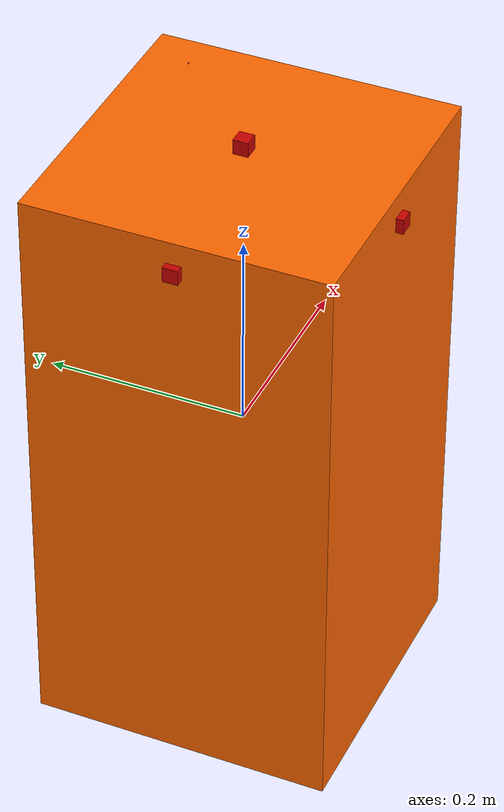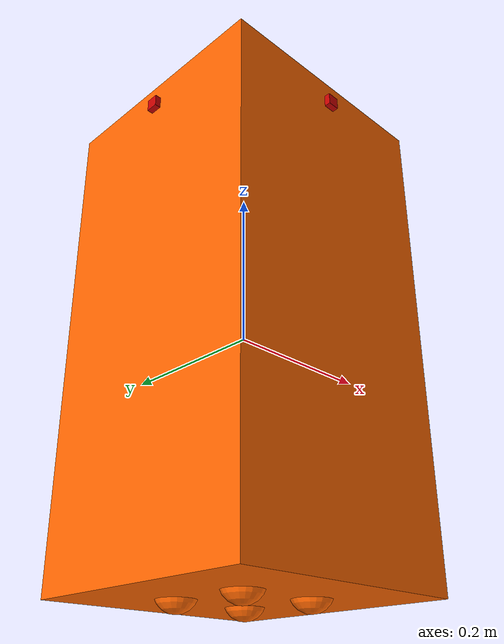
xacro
<?xml version="1.0"?>
<robot name="power" xmlns:xacro="http://www.ros.org/wiki/xacro">

  <!-- The following included files set up definitions of parts of the robot body -->

  <!-- power base -->
  <xacro:include filename="$(find mrs_description)/urdf/power_base/base.urdf.xacro" />

  <!-- materials for visualization -->
  <xacro:include filename="$(find mrs_description)/urdf/materials.urdf.xacro" />

  <!-- Now we can start using the macros included above to define the actual power -->

  <!-- foot for arm-->
  <xacro:power_base name="base"/>

  <gazebo>
    <plugin name="gazebo_ros_controller_manager" filename="libgazebo_ros_control.so">
      <robotNamespace>/mrs</robotNamespace>
    </plugin>

    <plugin name="object_controller" filename="libgazebo_ros_planar_move.so">
      <commandTopic>/mrs/cmd_vel</commandTopic>
      <odometryTopic>odom</odometryTopic>
      <odometryFrame>odom</odometryFrame>
      <odometryRate>20.0</odometryRate>
      <robotBaseFrame>base_footprint</robotBaseFrame>
    </plugin>

  </gazebo>

</robot>

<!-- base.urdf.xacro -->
<robot xmlns:xacro="http://www.ros.org/wiki/xacro">
<xacro:include filename="$(find mrs_description)/urdf/power_base/ball_bearing.urdf.xacro" />
    <!-- constants for robot -->
<xacro:include filename="$(find mrs_description)/urdf/common_mrs.xacro" />
  <!-- simplified box collision geometry for base -->
<xacro:include filename="$(find
mrs_description)/urdf/power_base/sm_other.urdf.xacro" />
  <property name="mass" value="22.0"/>
  <property name="p_baselen" value=".3" />
  <property name="p_basewidth" value=".3" />
  <property name="p_baseheight" value=".6" />

  <xacro:macro name="power_base" params="name">
  <link name="${name}_footprint">
    <inertial>
      <mass value="0.1"/>
      <origin xyz="0 0 ${-p_baseheight/2}" rpy="0 0 0"/>
      <inertia ixx="1.0" ixy="0.0" ixz="0.0" iyy="1.0" iyz="0.0" izz="1.0"/>
    </inertial>
    <visual>
      <origin xyz="0 0 0" rpy="0 0 0"/>
      <geometry>
        <box size="0.001 0.001 0.001"/>
      </geometry>
      <material name="red"/>
    </visual>
    <collision>
      <origin xyz="0 0 ${-p_baseheight/2}" rpy="0 0 0"/>
      <geometry>
        <box size="0.001 0.001 0.001"/>
      </geometry>
    </collision>
  </link>

  <joint name="${name}_footprint_joint" type="fixed">
    <origin xyz="0 0 0" rpy="0 0 0"/>
    <child link="${name}_link_support"/>
    <parent link="${name}_footprint"/>
  </joint>

  <link name="${name}_link_support">
    <visual>
      <geometry>
        <box size="${p_baselen} ${p_basewidth} ${p_baseheight}" />
      </geometry>
      <material name="Orange"/>
    </visual>
    <collision>
      <geometry>
        <box size="${p_baselen-0.1} ${p_basewidth-0.05} ${p_baseheight-0.05}" />
      </geometry>
    </collision>
    <xacro:default_inertial mass="2" />
  </link>

  <gazebo reference="${name}_link_support">
    <material>Gazebo/Orange</material>
  </gazebo>

<xacro:Ball_bearing mass="0.1" instance="1" dia="0.05" x="0.05" y="0.05" z="-0.29" parent="${name}_link_support"/>
<xacro:Ball_bearing mass="0.1" instance="2" dia="0.05" x="-0.05" y="0.05" z="-0.29" parent="${name}_link_support"/>
<xacro:Ball_bearing mass="0.1" instance="3" dia="0.05" x="0.05" y="-0.05" z="-0.29" parent="${name}_link_support"/>
<xacro:Ball_bearing mass="0.1" instance="4" dia="0.05" x="-0.05" y="-0.05" z="-0.29" parent="${name}_link_support"/>

<xacro:Camera parent="${name}_link_support" prefix="base" x="0.15" y="0" z="0.27" instance="1" />
<xacro:Camera parent="${name}_link_support" prefix="base" x="0" y="0.15" z="0.27" instance="2" />
<xacro:Camera parent="${name}_link_support" prefix="base" x="-0.15" y="0" z="0.27" instance="3" />
<xacro:Camera parent="${name}_link_support" prefix="base" x="0" y="-0.15" z="0.27" instance="4" />

<xacro:Laser parent="${name}_link_support" prefix="base" x="0" y="0" z="0.31" instance="1" />

<xacro:IMU parent="${name}_link_support" prefix="base" x="0.1" y="0.1" z="0.31"  />
  </xacro:macro>

</robot>

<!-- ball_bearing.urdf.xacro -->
<robot xmlns:xacro="http://www.ros.org/wiki/xacro">

		<!-- Constants for robot -->
	<xacro:include filename="$(find mrs_description)/urdf/common_mrs.xacro" />
  <!-- simplified box collision geometry for base -->

  <property name="mass" value="22.0"/>

 <macro name="Ball_bearing" params="mass instance dia x y z parent">
  <joint name="bearing_joint_${instance}" type="fixed">
    <origin rpy="0 0 0" xyz="${x} ${y} ${z}"/>
    <parent link="${parent}"/>
    <child link="bearing_link1_${instance}"/>
  </joint>
  <link name="bearing_link1_${instance}">
    <inertial>
      <mass value="${mass}"/>
      <origin xyz="0 0 0"/>
      <inertia ixx="${2/5*mass*dia/2*dia/2}" ixy="0" ixz="0" iyy="${2/5*mass*dia/2*dia/2}" iyz="0" izz="${2/5*mass*dia/2*dia/2}"/>
    </inertial>

  </link>
   <link name="bearing_link2_${instance}">
      <inertial>
        <mass value="${mass}"/>
        <origin xyz="0 0 0"/>
        <inertia ixx="${2/5*mass*dia/2*dia/2}" ixy="0" ixz="0" iyy="${2/5*mass*dia/2*dia/2}" iyz="0" izz="${2/5*mass*dia/2*dia/2}"/>
      </inertial>
      <visual>
      <origin rpy="0 0 0" xyz="0 0 0"/>
      <geometry>
        <sphere radius="${dia/2}"/>
      </geometry>
      <material name="Orange"/>
    </visual>
    <collision>
      <origin rpy="0 0 0" xyz="0 0 0"/>
      <geometry>
        <sphere radius="${dia/2}"/>
      </geometry>
      <contact_coefficients> <mu>0.0</mu> </contact_coefficients>
    </collision>
    </link>
      <joint name="bearing_joint2_${instance}" type="fixed">
    <origin rpy="0 0 0" xyz="0 0 0"/>
    <parent link="bearing_link1_${instance}"/>
    <child link="bearing_link2_${instance}"/>
  </joint>

  	<gazebo reference="bearing_link1_${instance}">
		<material>Gazebo/Black</material>
		<selfCollide>false</selfCollide>
	</gazebo>
	<gazebo reference="bearing_link2_${instance}">
		<material>Gazebo/Black</material>
		<selfCollide>false</selfCollide>
	</gazebo>

	</macro>
	</robot>

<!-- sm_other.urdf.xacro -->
<robot xmlns:xacro="http://www.ros.org/wiki/xacro">

        <!-- Constants for robot -->
    <xacro:include filename="$(find mrs_description)/urdf/common_mrs.xacro" />
  <!-- simplified box collision geometry for base -->

  <property name="mass" value="22.0"/>

   <!-- Size of square 'camera' box -->
  <xacro:property name="camera_size" value="0.015" />

    <xacro:macro name="Camera" params="parent prefix x y z instance">
    <joint name="${instance}_${prefix}_camera_joint" type="fixed">
      <axis xyz="1 0 0" />
      <parent link="${parent}" />
      <child link="${instance}_${prefix}_camera_link" />
      <origin rpy="0 0 0" xyz="${x} ${y} ${z}" />
    </joint>
    <link name="${instance}_${prefix}_camera_link">
      <visual>
        <geometry>
            <box size="${camera_size} ${camera_size} ${camera_size}"/>
        </geometry>
        <origin rpy="0 0 0 " xyz="0 0 0" />
        <material name="Red"/>
      </visual>
      <collision>
        <origin rpy="0 0 0 " xyz="0 0 0" />
        <geometry>
            <box size="${camera_size} ${camera_size} ${camera_size}"/>
        </geometry>
      </collision>
      <inertial>
        <mass value="1e-5" />
        <origin xyz="0 0 0" rpy="0 0 0"/>
        <inertia ixx="1e-6" ixy="0" ixz="0" iyy="1e-6" iyz="0" izz="1e-6" />
      </inertial>
    </link>
    <gazebo reference="${instance}_${prefix}_camera_link">
      <mu1>0.2</mu1>
      <mu2>0.2</mu2>
      <material>Gazebo/Red</material>

      <sensor type="camera" name="${instance}_${prefix}_camera">
        <always_on>true</always_on>
        <update_rate>30.0</update_rate>
        <camera name="${instance}_${prefix}_camera">
          <horizontal_fov>1.3962634</horizontal_fov>
          <image>
            <width>800</width>
            <height>800</height>
            <format>R8G8B8</format>
          </image>
          <clip>
            <near>0.02</near>
            <far>300</far>
          </clip>
        </camera>
        <plugin name="camera_controller" filename="libgazebo_ros_camera.so">
          <cameraName>mrs/${instance}_${prefix}_camera</cameraName>
          <imageTopicName>image_raw</imageTopicName>
          <cameraInfoTopicName>camera_info</cameraInfoTopicName>
          <frameName>camera_link</frameName>
          <hackBaseline>0.07</hackBaseline>
          <distortionK1>0.0</distortionK1>
          <distortionK2>0.0</distortionK2>
          <distortionK3>0.0</distortionK3>
          <distortionT1>0.0</distortionT1>
          <distortionT2>0.0</distortionT2>
        </plugin>
      </sensor>
    </gazebo>

    </xacro:macro>

  <xacro:macro name="IMU" params="parent prefix x y z">
    <joint name="${prefix}_imu_joint" type="fixed">
      <axis xyz="1 0 0" />
      <parent link="${parent}" />
      <child link="${prefix}_imu_link" />
      <origin rpy="0 0 0" xyz="${x} ${y} ${z}" />
    </joint>
    <link name="${prefix}_imu_link">
      <visual>
        <geometry>
            <box size="0.001 0.001 0.001"/>
        </geometry>
        <origin rpy="0 0 0 " xyz="0 0 0" />
        <material name="Red"/>
      </visual>
      <collision>
        <origin rpy="0 0 0 " xyz="0 0 0" />
        <geometry>
            <box size="0.001 0.001 0.001"/>
        </geometry>
      </collision>
      <inertial>
        <mass value="1e-5" />
        <origin xyz="0 0 0" rpy="0 0 0"/>
        <inertia ixx="1e-6" ixy="0" ixz="0" iyy="1e-6" iyz="0" izz="1e-6" />
      </inertial>
    </link>
    <gazebo>
      <plugin filename="libgazebo_ros_imu.so" name="imu_en_ros">
        <bodyName>${prefix}_imu_link</bodyName>
        <robotNamespace>mrs</robotNamespace>
        <topicName>${prefix}_IMU</topicName>
      </plugin>
    </gazebo>

  </xacro:macro>

    <xacro:macro name="Laser" params="parent prefix x y z instance">
    <joint name="${instance}_${prefix}_laser_joint" type="fixed">
      <axis xyz="1 0 0" />
      <parent link="${parent}" />
      <child link="${instance}_${prefix}_laser_link" />
      <origin rpy="0 0 0" xyz="${x} ${y} ${z}" />
    </joint>
    <link name="${instance}_${prefix}_laser_link">
      <visual>
        <geometry>
            <box size="${camera_size} ${camera_size} ${camera_size}"/>
        </geometry>
        <origin rpy="0 0 0 " xyz="0 0 0" />
        <material name="Red"/>
      </visual>
      <collision>
        <origin rpy="0 0 0 " xyz="0 0 0" />
        <geometry>
            <mesh filename="package://mrs_description/meshes/hokuyo.dae"/>
        </geometry>
      </collision>
      <inertial>
        <mass value="1e-5" />
        <origin xyz="0 0 0" rpy="0 0 0"/>
        <inertia ixx="1e-6" ixy="0" ixz="0" iyy="1e-6" iyz="0" izz="1e-6" />
      </inertial>
    </link>
    <gazebo reference="${instance}_${prefix}_laser_link">
      <sensor type="gpu_ray" name="${instance}_${prefix}_lasersensor">
        <pose>0 0 0 0 0 0</pose>
        <visualize>false</visualize>
        <update_rate>40</update_rate>
        <ray>
          <scan>
            <horizontal>
              <samples>720</samples>
              <resolution>1</resolution>
              <min_angle>-1.570796</min_angle>
              <max_angle>1.570796</max_angle>
            </horizontal>
          </scan>
          <range>
            <min>0.10</min>
            <max>30.0</max>
            <resolution>0.01</resolution>
          </range>
        </ray>
        <plugin name="gazebo_ros_head_hokuyo_controller" filename="libgazebo_ros_gpu_laser.so">
          <topicName>/mrs/${instance}_${prefix}_lasersensor</topicName>
          <frameName>${instance}_${prefix}_laser_link</frameName>
        </plugin>
      </sensor>
    </gazebo>
    </xacro:macro>

    <xacro:macro name="SMRadprobe" params="parent prefix reflect instance">
        <joint name="${instance}_${prefix}_SMRadprobe_joint" type="fixed">
            <parent link="${parent}" />
            <child link="${instance}_${prefix}_rad_pole" />
            <origin rpy="0 ${-pi/2} 0" xyz="-0.1 0 0" />
        </joint>
        <link name="${instance}_${prefix}_rad_pole">
            <visual>
                <geometry>
                    <cylinder length="0.2" radius=".03" />
                </geometry>
                <origin rpy="0 0 0 " xyz="0 0 0" />
                <material name="Gray">
                    <color rgba=".7 .7 .7 1" />
                </material>
            </visual>
        </link>
        <joint name="${instance}_${prefix}_rad_joint" type="fixed">
            <axis xyz="0 0 1" />
            <origin rpy="0 0 0" xyz="0 0 0.1" />
            <parent link="${instance}_${prefix}_rad_pole" />
            <child link="${instance}_${prefix}_rad" />
        </joint>
        <link name="${instance}_${prefix}_rad">
            <visual>
                <origin rpy="0.0 0 0" xyz="0 0 0" />
                <geometry>
                    <cylinder length="0.05" radius=".05" />
                </geometry>
                                <material name="Black"/>
            </visual>
        </link>
    <gazebo reference="${instance}_${prefix}_rad_pole">
      <material>Gazebo/Red</material>
      <selfCollide>false</selfCollide>
    </gazebo>
    <gazebo reference="${instance}_${prefix}_rad">
      <material>Gazebo/Black</material>
      <selfCollide>false</selfCollide>
    </gazebo>
    </xacro:macro>

    <xacro:macro name="SMHand" params="parent prefix reflect instance">
        <joint name="${instance}_${prefix}_SMHand_joint" type="fixed">
            <parent link="${parent}" />
            <child link="${instance}_${prefix}_gripper_pole" />
            <origin rpy="0 0 0" xyz="0 0 0.05" />
        </joint>
        <link name="${instance}_${prefix}_gripper_pole">
            <visual>
                <origin rpy="0 0 0" xyz="0 0 0" />
                <geometry>
                    <cylinder length="0.1" radius=".02" />
                </geometry>
                <material name="Gray">
                    <color rgba=".7 .7 .7 1" />
                </material>
            </visual>
        </link>
        <joint name="${instance}_${prefix}_left_gripper_joint" type="revolute">
            <axis xyz="0 0 1" />
            <limit effort="1000.0" lower="0.0" upper="0.548" velocity="0.5" />
            <origin rpy="0 0 0" xyz="0 0.005 0.07" />
            <parent link="${instance}_${prefix}_gripper_pole" />
            <child link="${instance}_${prefix}_left_gripper" />
        </joint>
        <link name="${instance}_${prefix}_left_gripper">
            <visual>
                <origin rpy="0.0 0 0" xyz="0 0 0" />
                <geometry>
                    <mesh filename="package://pr2_description/meshes/gripper_v0/l_finger.dae" scale="0.5 0.5 0.5" />
                </geometry>
            </visual>
        </link>
        <joint name="${instance}_${prefix}_left_tip_joint" type="fixed">
            <parent link="${instance}_${prefix}_left_gripper" />
            <child link="${instance}_${prefix}_left_tip" />
        </joint>
        <link name="${instance}_${prefix}_left_tip">
            <visual>
                <origin rpy="0.0 0 0" xyz="0.045 0.00249 0" />
                <geometry>
                    <mesh
                        filename="package://pr2_description/meshes/gripper_v0/l_finger_tip.dae" scale="0.5 0.5 0.5"/>
                </geometry>
            </visual>
        </link>
        <joint name="${instance}_${prefix}_right_gripper_joint" type="revolute">
            <axis xyz="0 0 -1" />
            <limit effort="1000.0" lower="0.0" upper="0.548" velocity="0.5" />
            <origin rpy="0 0 0" xyz="0 -0.005 0.07" />
            <parent link="${instance}_${prefix}_gripper_pole" />
            <child link="${instance}_${prefix}_right_gripper" />
        </joint>
        <link name="${instance}_${prefix}_right_gripper">
            <visual>
                <origin rpy="-3.1415 0 0" xyz="0 0 0" />
                <geometry>
                    <mesh filename="package://pr2_description/meshes/gripper_v0/l_finger.dae" scale="0.5 0.5 0.5" />
                </geometry>
            </visual>
        </link>
        <joint name="${instance}_${prefix}_right_tip_joint" type="fixed">
            <parent link="${instance}_${prefix}_right_gripper" />
            <child link="${instance}_${prefix}_right_tip" />
        </joint>
        <link name="${instance}_${prefix}_right_tip">
            <visual>
                <origin rpy="-3.1415 0 0" xyz="0.045 0.00249 0" />
                <geometry>
                    <mesh
                        filename="package://pr2_description/meshes/gripper_v0/l_finger_tip.dae" scale="0.5 0.5 0.5" />
                </geometry>
            </visual>
        </link>
    <gazebo reference="${instance}_${prefix}_gripper_pole">
      <material>Gazebo/Grey</material>
      <selfCollide>false</selfCollide>
    </gazebo>
    <gazebo reference="${instance}_${prefix}_left_gripper">
      <material>Gazebo/Grey</material>
      <selfCollide>false</selfCollide>
    </gazebo>
    <gazebo reference="${instance}_${prefix}_left_tip">
      <material>Gazebo/Grey</material>
      <selfCollide>false</selfCollide>
    </gazebo>
    <gazebo reference="${instance}_${prefix}_right_gripper">
      <material>Gazebo/Grey</material>
      <selfCollide>false</selfCollide>
    </gazebo>
    </xacro:macro>

</robot>

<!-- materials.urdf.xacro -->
<robot>

  <material name="Blue">
    <color rgba="0.0 0.0 0.8 1.0"/>
  </material>

  <material name="Grey">
    <color rgba="0.7 0.7 0.7 1.0"/>
  </material>

  <material name="Grey2">
    <color rgba="0.9 0.9 0.9 1.0"/>
  </material>

  <material name="Red">
    <color rgba="0.8 0.0 0.0 1.0"/>
  </material>

  <material name="White">
    <color rgba="1.0 1.0 1.0 1.0"/>
  </material>

  <material name="Black">
    <color rgba="0.1 0.1 0.1 1.0"/>
  </material>

  <material name="LightGrey">
    <color rgba="0.6 0.6 0.6 1.0"/>
  </material>

    <material name="Orange">
    <color rgba="1.0 0.4 0.0 1.0"/>
  </material>

  <material name="DarkGrey">
    <color rgba="0.3 0.3 0.3 1.0"/>
  </material>

  <material name="Green">
    <color rgba="0.0 1.0 0.0 1.0"/>
  </material>

  <material name="Caster">
    <texture filename="package://pr2_description/materials/textures/pr2_caster_texture.png" />
  </material>

  <material name="Wheel_l">
    <texture filename="package://pr2_description/materials/textures/pr2_wheel_left.png" />
  </material>

  <material name="Wheel_r">
    <texture filename="package://pr2_description/materials/textures/pr2_wheel_right.png" />
  </material>

  <material name="RollLinks">
    <texture filename="package://pr2_description/materials/textures/pr2_wheel_left.png" />
  </material>

</robot>
